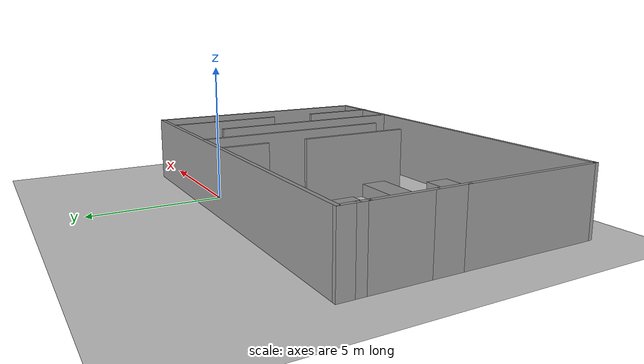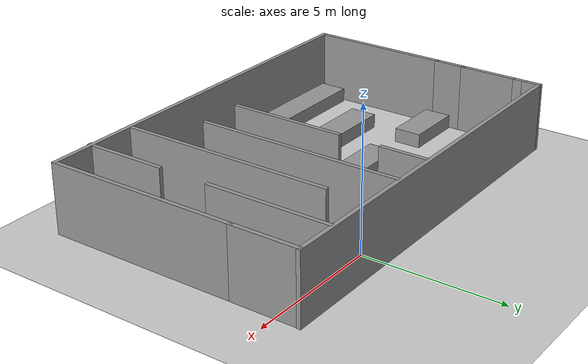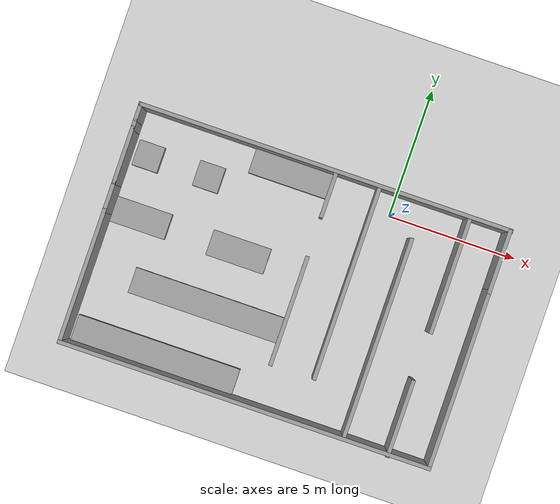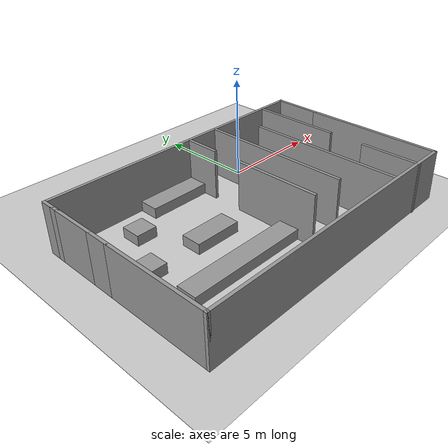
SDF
<sdf version="1.7">
 <world name="default">
  <scene><ambient>0.4 0.4 0.4 1</ambient><background>0.7 0.7 0.7 1</background><shadows>1</shadows></scene>
  <light name="sun" type="directional">
   <pose>0 0 10 0 -0 0</pose>
   <diffuse>0.8 0.8 0.8 1</diffuse>
   <specular>0.2 0.2 0.2 1</specular>
   <attenuation>
    <range>1000</range>
    <constant>0.9</constant>
    <linear>0.01</linear>
    <quadratic>0.001</quadratic>
   </attenuation>
   <direction>-0.5 0.1 -0.9</direction>
   <spot><inner_angle>0</inner_angle><outer_angle>0</outer_angle><falloff>0</falloff></spot>
  </light>
  <model name="ground_plane">
   <static>1</static>
   <link name="link">
    <collision name="collision">
     <geometry><plane><normal>0 0 1</normal><size>100 100</size></plane></geometry>
     <surface><friction><ode><mu>100</mu><mu2>50</mu2></ode></friction></surface>
    </collision>
    <visual name="visual">
     <cast_shadows>0</cast_shadows>
     <geometry><plane><normal>0 0 1</normal><size>100 100</size></plane></geometry>
     <material>
      <script><uri>file://media/materials/scripts/gazebo.material</uri><name>Gazebo/Grey</name></script>
     </material>
    </visual>
   </link>
  </model>
  <physics type="ode">
   <real_time_update_rate>0</real_time_update_rate>
   <max_step_size>0.001</max_step_size>
   <real_time_factor>1</real_time_factor>
   <ode>
    <solver>
     <type>quick</type>
     <iters>150</iters>
     <precon_iters>0</precon_iters>
     <sor>1.4</sor>
     <use_dynamic_moi_rescaling>1</use_dynamic_moi_rescaling>
    </solver>
    <constraints>
     <cfm>1e-05</cfm>
     <erp>0.2</erp>
     <contact_max_correcting_vel>2000</contact_max_correcting_vel>
     <contact_surface_layer>0.01</contact_surface_layer>
    </constraints>
   </ode>
  </physics>
  <gravity>0 0 -9.8</gravity>
  <magnetic_field>6e-06 2.3e-05 -4.2e-05</magnetic_field>
  <atmosphere type="adiabatic"/>
  <spherical_coordinates>
   <surface_model>EARTH_WGS84</surface_model>
   <latitude_deg>0</latitude_deg>
   <longitude_deg>0</longitude_deg>
   <elevation>0</elevation>
   <heading_deg>0</heading_deg>
  </spherical_coordinates>
  <model name="half_square">
   <pose>-2.87363 -3.76482 0 0 -0 0</pose>
   <link name="Wall_0">
    <collision name="Wall_0_Collision">
     <geometry><box><size>14.5 0.15 2.5</size></box></geometry>
     <pose>0 0 1.25 0 -0 0</pose>
    </collision>
    <visual name="Wall_0_Visual">
     <pose>0 0 1.25 0 -0 0</pose>
     <geometry><box><size>14.5 0.15 2.5</size></box></geometry>
     <material>
      <script><uri>file://media/materials/scripts/gazebo.material</uri><name>Gazebo/Grey</name></script>
      <ambient>1 1 1 1</ambient>
     </material>
     <meta><layer>0</layer></meta>
    </visual>
    <pose>-0.010056 -4.61503 0 0 -0 0</pose>
   </link>
   <link name="Wall_11">
    <collision name="Wall_11_Collision">
     <geometry><box><size>2.5 0.15 2.5</size></box></geometry>
     <pose>0 0 1.25 0 -0 0</pose>
    </collision>
    <visual name="Wall_11_Visual">
     <pose>0 0 1.25 0 -0 0</pose>
     <geometry><box><size>2.5 0.15 2.5</size></box></geometry>
     <material>
      <script><uri>file://media/materials/scripts/gazebo.material</uri><name>Gazebo/Grey</name></script>
      <ambient>1 1 1 1</ambient>
     </material>
     <meta><layer>0</layer></meta>
    </visual>
    <pose>7.16494 3.40997 0 0 -0 1.5708</pose>
   </link>
   <link name="Wall_13">
    <collision name="Wall_13_Collision">
     <geometry><box><size>0.730235 0.15 2.5</size></box></geometry>
     <pose>0 0 1.25 0 -0 0</pose>
    </collision>
    <visual name="Wall_13_Visual">
     <pose>0 0 1.25 0 -0 0</pose>
     <geometry><box><size>0.730235 0.15 2.5</size></box></geometry>
     <material>
      <script><uri>file://media/materials/scripts/gazebo.material</uri><name>Gazebo/Grey</name></script>
      <ambient>1 1 1 1</ambient>
     </material>
     <meta><layer>0</layer></meta>
    </visual>
    <pose>-7.18506 4.32491 0 0 -0 1.5708</pose>
   </link>
   <link name="Wall_14">
    <collision name="Wall_14_Collision">
     <geometry><box><size>14.5 0.15 2.5</size></box></geometry>
     <pose>0 0 1.25 0 -0 0</pose>
    </collision>
    <visual name="Wall_14_Visual">
     <pose>0 0 1.25 0 -0 0</pose>
     <geometry><box><size>14.5 0.15 2.5</size></box></geometry>
     <material>
      <script><uri>file://media/materials/scripts/gazebo.material</uri><name>Gazebo/Grey</name></script>
      <ambient>1 1 1 1</ambient>
     </material>
     <meta><layer>0</layer></meta>
    </visual>
    <pose>0.010057 4.61486 0 0 -0 0</pose>
   </link>
   <link name="Wall_2">
    <collision name="Wall_2_Collision">
     <geometry><box><size>5.25 0.15 2.5</size></box></geometry>
     <pose>0 0 1.25 0 -0 0</pose>
    </collision>
    <visual name="Wall_2_Visual">
     <pose>0 0 1.25 0 -0 0</pose>
     <geometry><box><size>5.25 0.15 2.5</size></box></geometry>
     <material>
      <script><uri>file://media/materials/scripts/gazebo.material</uri><name>Gazebo/Grey</name></script>
      <ambient>1 1 1 1</ambient>
     </material>
     <meta><layer>0</layer></meta>
    </visual>
    <pose>-7.18506 -2.06503 0 0 -0 1.5708</pose>
   </link>
   <link name="Wall_4">
    <collision name="Wall_4_Collision">
     <geometry><box><size>7 0.15 2.5</size></box></geometry>
     <pose>0 0 1.25 0 -0 0</pose>
    </collision>
    <visual name="Wall_4_Visual">
     <pose>0 0 1.25 0 -0 0</pose>
     <geometry><box><size>7 0.15 2.5</size></box></geometry>
     <material>
      <script><uri>file://media/materials/scripts/gazebo.material</uri><name>Gazebo/Grey</name></script>
      <ambient>1 1 1 1</ambient>
     </material>
     <meta><layer>0</layer></meta>
    </visual>
    <pose>7.16494 -1.19003 0 0 -0 1.5708</pose>
   </link>
   <link name="Wall_6">
    <collision name="Wall_6_Collision">
     <geometry><box><size>1.25 0.15 2.5</size></box></geometry>
     <pose>0 0 1.25 0 -0 0</pose>
    </collision>
    <visual name="Wall_6_Visual">
     <pose>0 0 1.25 0 -0 0</pose>
     <geometry><box><size>1.25 0.15 2.5</size></box></geometry>
     <material>
      <script><uri>file://media/materials/scripts/gazebo.material</uri><name>Gazebo/Grey</name></script>
      <ambient>1 1 1 1</ambient>
     </material>
     <meta><layer>0</layer></meta>
    </visual>
    <pose>-7.18506 1.03497 0 0 -0 1.5708</pose>
   </link>
   <link name="Wall_8">
    <collision name="Wall_8_Collision">
     <geometry><box><size>2.25 0.15 2.5</size></box></geometry>
     <pose>0 0 1.25 0 -0 0</pose>
    </collision>
    <visual name="Wall_8_Visual">
     <pose>0 0 1.25 0 -0 0</pose>
     <geometry><box><size>2.25 0.15 2.5</size></box></geometry>
     <material>
      <script><uri>file://media/materials/scripts/gazebo.material</uri><name>Gazebo/Grey</name></script>
      <ambient>1 1 1 1</ambient>
     </material>
     <meta><layer>0</layer></meta>
    </visual>
    <pose>-7.18506 2.63497 0 0 -0 1.5708</pose>
   </link>
   <link name="Wall_9">
    <collision name="Wall_9_Collision">
     <geometry><box><size>0.5 0.15 2.5</size></box></geometry>
     <pose>0 0 1.25 0 -0 0</pose>
    </collision>
    <visual name="Wall_9_Visual">
     <pose>0 0 1.25 0 -0 0</pose>
     <geometry><box><size>0.5 0.15 2.5</size></box></geometry>
     <material>
      <script><uri>file://media/materials/scripts/gazebo.material</uri><name>Gazebo/Grey</name></script>
      <ambient>1 1 1 1</ambient>
     </material>
     <meta><layer>0</layer></meta>
    </visual>
    <pose>-7.18506 3.85997 0 0 -0 1.5708</pose>
   </link>
   <static>1</static>
  </model>
  <plugin name="gazebo_occupancy_map" filename="libgazebo_2Dmap_plugin.so">
   <map_resolution>0.02</map_resolution>
   <map_height>0.7</map_height>
   <map_size_x>20</map_size_x>
   <map_size_y>20</map_size_y>
   <init_robot_x>0</init_robot_x>
   <init_robot_y>0</init_robot_y>
  </plugin>
  <model name="half_blocks">
   <link name="link_3">
    <inertial>
     <mass>6.41785</mass>
     <inertia><ixx>1.06964</ixx><ixy>0</ixy><ixz>0</ixz><iyy>22.5635</iyy><iyz>0</iyz><izz>22.5635</izz></inertia>
    </inertial>
    <pose>-0.066497 -4.83203 0 0 -0 0</pose>
    <visual name="visual">
     <geometry><box><size>6.41785 1 1</size></box></geometry>
     <material>
      <lighting>1</lighting>
      <script><uri>file://media/materials/scripts/gazebo.material</uri><name>Gazebo/Grey</name></script>
      <shader type="pixel"/>
     </material>
    </visual>
    <collision name="collision">
     <geometry><box><size>6.41785 1 1</size></box></geometry>
     <surface>
      <friction>
       <ode><mu>1</mu><mu2>1</mu2><fdir1>0 0 0</fdir1><slip1>0</slip1><slip2>0</slip2></ode>
       <torsional>
        <coefficient>1</coefficient>
        <patch_radius>0</patch_radius>
        <surface_radius>0</surface_radius>
        <use_patch_radius>1</use_patch_radius>
        <ode><slip>0</slip></ode>
       </torsional>
      </friction>
      <bounce><restitution_coefficient>0</restitution_coefficient><threshold>1e+06</threshold></bounce>
      <contact>
       <collide_without_contact>0</collide_without_contact>
       <collide_without_contact_bitmask>1</collide_without_contact_bitmask>
       <collide_bitmask>1</collide_bitmask>
       <ode>
        <soft_cfm>0</soft_cfm>
        <soft_erp>0.2</soft_erp>
        <kp>1e+13</kp>
        <kd>1</kd>
        <max_vel>0.01</max_vel>
        <min_depth>0</min_depth>
       </ode>
       <bullet>
        <split_impulse>1</split_impulse>
        <split_impulse_penetration_threshold>-0.01</split_impulse_penetration_threshold>
        <soft_cfm>0</soft_cfm>
        <soft_erp>0.2</soft_erp>
        <kp>1e+13</kp>
        <kd>1</kd>
       </bullet>
      </contact>
     </surface>
    </collision>
   </link>
   <link name="link_3_clone">
    <inertial>
     <mass>5.92562</mass>
     <inertia><ixx>0.987603</ixx><ixy>0</ixy><ixz>0</ixz><iyy>17.8326</iyy><iyz>0</iyz><izz>17.8326</izz></inertia>
    </inertial>
    <pose>1.15812 -2.45701 0 0 -0 0</pose>
    <visual name="visual">
     <geometry><box><size>5.92562 1 1</size></box></geometry>
     <material>
      <lighting>1</lighting>
      <script><uri>file://media/materials/scripts/gazebo.material</uri><name>Gazebo/Grey</name></script>
      <shader type="pixel"/>
     </material>
    </visual>
    <collision name="collision">
     <geometry><box><size>5.92562 1 1</size></box></geometry>
     <surface>
      <friction>
       <ode><mu>1</mu><mu2>1</mu2><fdir1>0 0 0</fdir1><slip1>0</slip1><slip2>0</slip2></ode>
       <torsional>
        <coefficient>1</coefficient>
        <patch_radius>0</patch_radius>
        <surface_radius>0</surface_radius>
        <use_patch_radius>1</use_patch_radius>
        <ode><slip>0</slip></ode>
       </torsional>
      </friction>
      <bounce><restitution_coefficient>0</restitution_coefficient><threshold>1e+06</threshold></bounce>
      <contact>
       <collide_without_contact>0</collide_without_contact>
       <collide_without_contact_bitmask>1</collide_without_contact_bitmask>
       <collide_bitmask>1</collide_bitmask>
       <ode>
        <soft_cfm>0</soft_cfm>
        <soft_erp>0.2</soft_erp>
        <kp>1e+13</kp>
        <kd>1</kd>
        <max_vel>0.01</max_vel>
        <min_depth>0</min_depth>
       </ode>
       <bullet>
        <split_impulse>1</split_impulse>
        <split_impulse_penetration_threshold>-0.01</split_impulse_penetration_threshold>
        <soft_cfm>0</soft_cfm>
        <soft_erp>0.2</soft_erp>
        <kp>1e+13</kp>
        <kd>1</kd>
       </bullet>
      </contact>
     </surface>
    </collision>
   </link>
   <link name="link_4">
    <inertial>
     <mass>2.28802</mass>
     <inertia><ixx>0.381337</ixx><ixy>0</ixy><ixz>0</ixz><iyy>1.18882</iyy><iyz>0</iyz><izz>1.18882</izz></inertia>
    </inertial>
    <pose>1.64442 -0.161822 0 0 -0 0</pose>
    <visual name="visual">
     <geometry><box><size>2.28802 1 1</size></box></geometry>
     <material>
      <lighting>1</lighting>
      <script><uri>file://media/materials/scripts/gazebo.material</uri><name>Gazebo/Grey</name></script>
      <shader type="pixel"/>
     </material>
    </visual>
    <collision name="collision">
     <geometry><box><size>2.28802 1 1</size></box></geometry>
     <surface>
      <friction>
       <ode><mu>1</mu><mu2>1</mu2><fdir1>0 0 0</fdir1><slip1>0</slip1><slip2>0</slip2></ode>
       <torsional>
        <coefficient>1</coefficient>
        <patch_radius>0</patch_radius>
        <surface_radius>0</surface_radius>
        <use_patch_radius>1</use_patch_radius>
        <ode><slip>0</slip></ode>
       </torsional>
      </friction>
      <bounce><restitution_coefficient>0</restitution_coefficient><threshold>1e+06</threshold></bounce>
      <contact>
       <collide_without_contact>0</collide_without_contact>
       <collide_without_contact_bitmask>1</collide_without_contact_bitmask>
       <collide_bitmask>1</collide_bitmask>
       <ode>
        <soft_cfm>0</soft_cfm>
        <soft_erp>0.2</soft_erp>
        <kp>1e+13</kp>
        <kd>1</kd>
        <max_vel>0.01</max_vel>
        <min_depth>0</min_depth>
       </ode>
       <bullet>
        <split_impulse>1</split_impulse>
        <split_impulse_penetration_threshold>-0.01</split_impulse_penetration_threshold>
        <soft_cfm>0</soft_cfm>
        <soft_erp>0.2</soft_erp>
        <kp>1e+13</kp>
        <kd>1</kd>
       </bullet>
      </contact>
     </surface>
    </collision>
   </link>
   <link name="link_5">
    <inertial>
     <mass>2.17448</mass>
     <inertia><ixx>0.362414</ixx><ixy>0</ixy><ixz>0</ixz><iyy>1.03803</iyy><iyz>0</iyz><izz>1.03803</izz></inertia>
    </inertial>
    <pose>-2.2472 -0.13715 0 0 -0 0</pose>
    <visual name="visual">
     <geometry><box><size>2.17449 1 1</size></box></geometry>
     <material>
      <lighting>1</lighting>
      <script><uri>file://media/materials/scripts/gazebo.material</uri><name>Gazebo/Grey</name></script>
      <shader type="pixel"/>
     </material>
    </visual>
    <collision name="collision">
     <geometry><box><size>2.17449 1 1</size></box></geometry>
     <surface>
      <friction>
       <ode><mu>1</mu><mu2>1</mu2><fdir1>0 0 0</fdir1><slip1>0</slip1><slip2>0</slip2></ode>
       <torsional>
        <coefficient>1</coefficient>
        <patch_radius>0</patch_radius>
        <surface_radius>0</surface_radius>
        <use_patch_radius>1</use_patch_radius>
        <ode><slip>0</slip></ode>
       </torsional>
      </friction>
      <bounce><restitution_coefficient>0</restitution_coefficient><threshold>1e+06</threshold></bounce>
      <contact>
       <collide_without_contact>0</collide_without_contact>
       <collide_without_contact_bitmask>1</collide_without_contact_bitmask>
       <collide_bitmask>1</collide_bitmask>
       <ode>
        <soft_cfm>0</soft_cfm>
        <soft_erp>0.2</soft_erp>
        <kp>1e+13</kp>
        <kd>1</kd>
        <max_vel>0.01</max_vel>
        <min_depth>0</min_depth>
       </ode>
       <bullet>
        <split_impulse>1</split_impulse>
        <split_impulse_penetration_threshold>-0.01</split_impulse_penetration_threshold>
        <soft_cfm>0</soft_cfm>
        <soft_erp>0.2</soft_erp>
        <kp>1e+13</kp>
        <kd>1</kd>
       </bullet>
      </contact>
     </surface>
    </collision>
   </link>
   <link name="link_6">
    <inertial>
     <mass>1</mass>
     <inertia>
      <ixx>0.166667</ixx>
      <ixy>0</ixy>
      <ixz>0</ixz>
      <iyy>0.166667</iyy>
      <iyz>0</iyz>
      <izz>0.166667</izz>
     </inertia>
    </inertial>
    <pose>-2.73356 2.14893 0 0 -0 0</pose>
    <visual name="visual">
     <geometry><box><size>1 1 1</size></box></geometry>
     <material>
      <lighting>1</lighting>
      <script><uri>file://media/materials/scripts/gazebo.material</uri><name>Gazebo/Grey</name></script>
      <shader type="pixel"/>
     </material>
    </visual>
    <collision name="collision">
     <geometry><box><size>1 1 1</size></box></geometry>
     <surface>
      <friction>
       <ode><mu>1</mu><mu2>1</mu2><fdir1>0 0 0</fdir1><slip1>0</slip1><slip2>0</slip2></ode>
       <torsional>
        <coefficient>1</coefficient>
        <patch_radius>0</patch_radius>
        <surface_radius>0</surface_radius>
        <use_patch_radius>1</use_patch_radius>
        <ode><slip>0</slip></ode>
       </torsional>
      </friction>
      <bounce><restitution_coefficient>0</restitution_coefficient><threshold>1e+06</threshold></bounce>
      <contact>
       <collide_without_contact>0</collide_without_contact>
       <collide_without_contact_bitmask>1</collide_without_contact_bitmask>
       <collide_bitmask>1</collide_bitmask>
       <ode>
        <soft_cfm>0</soft_cfm>
        <soft_erp>0.2</soft_erp>
        <kp>1e+13</kp>
        <kd>1</kd>
        <max_vel>0.01</max_vel>
        <min_depth>0</min_depth>
       </ode>
       <bullet>
        <split_impulse>1</split_impulse>
        <split_impulse_penetration_threshold>-0.01</split_impulse_penetration_threshold>
        <soft_cfm>0</soft_cfm>
        <soft_erp>0.2</soft_erp>
        <kp>1e+13</kp>
        <kd>1</kd>
       </bullet>
      </contact>
     </surface>
    </collision>
   </link>
   <link name="link_7">
    <inertial>
     <mass>1</mass>
     <inertia>
      <ixx>0.166667</ixx>
      <ixy>0</ixy>
      <ixz>0</ixz>
      <iyy>0.166667</iyy>
      <iyz>0</iyz>
      <izz>0.166667</izz>
     </inertia>
    </inertial>
    <pose>-0.328889 2.15439 0 0 -0 0</pose>
    <visual name="visual">
     <geometry><box><size>1 1 1</size></box></geometry>
     <material>
      <lighting>1</lighting>
      <script><uri>file://media/materials/scripts/gazebo.material</uri><name>Gazebo/Grey</name></script>
      <shader type="pixel"/>
     </material>
    </visual>
    <collision name="collision">
     <geometry><box><size>1 1 1</size></box></geometry>
     <surface>
      <friction>
       <ode><mu>1</mu><mu2>1</mu2><fdir1>0 0 0</fdir1><slip1>0</slip1><slip2>0</slip2></ode>
       <torsional>
        <coefficient>1</coefficient>
        <patch_radius>0</patch_radius>
        <surface_radius>0</surface_radius>
        <use_patch_radius>1</use_patch_radius>
        <ode><slip>0</slip></ode>
       </torsional>
      </friction>
      <bounce><restitution_coefficient>0</restitution_coefficient><threshold>1e+06</threshold></bounce>
      <contact>
       <collide_without_contact>0</collide_without_contact>
       <collide_without_contact_bitmask>1</collide_without_contact_bitmask>
       <collide_bitmask>1</collide_bitmask>
       <ode>
        <soft_cfm>0</soft_cfm>
        <soft_erp>0.2</soft_erp>
        <kp>1e+13</kp>
        <kd>1</kd>
        <max_vel>0.01</max_vel>
        <min_depth>0</min_depth>
       </ode>
       <bullet>
        <split_impulse>1</split_impulse>
        <split_impulse_penetration_threshold>-0.01</split_impulse_penetration_threshold>
        <soft_cfm>0</soft_cfm>
        <soft_erp>0.2</soft_erp>
        <kp>1e+13</kp>
        <kd>1</kd>
       </bullet>
      </contact>
     </surface>
    </collision>
   </link>
   <link name="link_8">
    <inertial>
     <mass>3.10091</mass>
     <inertia><ixx>0.516819</ixx><ixy>0</ixy><ixz>0</ixz><iyy>2.74318</iyy><iyz>0</iyz><izz>2.74318</izz></inertia>
    </inertial>
    <pose>2.57362 3.2847 0 0 -0 0</pose>
    <visual name="visual">
     <geometry><box><size>3.10091 1 1</size></box></geometry>
     <material>
      <lighting>1</lighting>
      <script><uri>file://media/materials/scripts/gazebo.material</uri><name>Gazebo/Grey</name></script>
      <shader type="pixel"/>
     </material>
    </visual>
    <collision name="collision">
     <geometry><box><size>3.10091 1 1</size></box></geometry>
     <surface>
      <friction>
       <ode><mu>1</mu><mu2>1</mu2><fdir1>0 0 0</fdir1><slip1>0</slip1><slip2>0</slip2></ode>
       <torsional>
        <coefficient>1</coefficient>
        <patch_radius>0</patch_radius>
        <surface_radius>0</surface_radius>
        <use_patch_radius>1</use_patch_radius>
        <ode><slip>0</slip></ode>
       </torsional>
      </friction>
      <bounce><restitution_coefficient>0</restitution_coefficient><threshold>1e+06</threshold></bounce>
      <contact>
       <collide_without_contact>0</collide_without_contact>
       <collide_without_contact_bitmask>1</collide_without_contact_bitmask>
       <collide_bitmask>1</collide_bitmask>
       <ode>
        <soft_cfm>0</soft_cfm>
        <soft_erp>0.2</soft_erp>
        <kp>1e+13</kp>
        <kd>1</kd>
        <max_vel>0.01</max_vel>
        <min_depth>0</min_depth>
       </ode>
       <bullet>
        <split_impulse>1</split_impulse>
        <split_impulse_penetration_threshold>-0.01</split_impulse_penetration_threshold>
        <soft_cfm>0</soft_cfm>
        <soft_erp>0.2</soft_erp>
        <kp>1e+13</kp>
        <kd>1</kd>
       </bullet>
      </contact>
     </surface>
    </collision>
   </link>
   <static>1</static>
   <pose>-6.61004 -2.97001 0 0 -0 0</pose>
  </model>
  <model name="half_maze">
   <pose>0.148628 -3.83448 0 0 -0 0</pose>
   <link name="Wall_11">
    <collision name="Wall_11_Collision">
     <geometry><box><size>7.5 0.15 2.5</size></box></geometry>
     <pose>0 0 1.25 0 -0 0</pose>
    </collision>
    <visual name="Wall_11_Visual">
     <pose>0 0 1.25 0 -0 0</pose>
     <geometry><box><size>7.5 0.15 2.5</size></box></geometry>
     <material>
      <script><uri>file://media/materials/scripts/gazebo.material</uri><name>Gazebo/Grey</name></script>
      <ambient>1 1 1 1</ambient>
     </material>
     <meta><layer>0</layer></meta>
    </visual>
    <pose>-0.90925 0.907538 0 0 -0 -1.5708</pose>
   </link>
   <link name="Wall_13">
    <collision name="Wall_13_Collision">
     <geometry><box><size>4.25 0.15 2.5</size></box></geometry>
     <pose>0 0 1.25 0 -0 0</pose>
    </collision>
    <visual name="Wall_13_Visual">
     <pose>0 0 1.25 0 -0 0</pose>
     <geometry><box><size>4.25 0.15 2.5</size></box></geometry>
     <material>
      <script><uri>file://media/materials/scripts/gazebo.material</uri><name>Gazebo/Grey</name></script>
      <ambient>1 1 1 1</ambient>
     </material>
     <meta><layer>0</layer></meta>
    </visual>
    <pose>-2.59597 -0.740882 0 0 -0 1.5708</pose>
   </link>
   <link name="Wall_15">
    <collision name="Wall_15_Collision">
     <geometry><box><size>1.75 0.15 2.5</size></box></geometry>
     <pose>0 0 1.25 0 -0 0</pose>
    </collision>
    <visual name="Wall_15_Visual">
     <pose>0 0 1.25 0 -0 0</pose>
     <geometry><box><size>1.75 0.15 2.5</size></box></geometry>
     <material>
      <script><uri>file://media/materials/scripts/gazebo.material</uri><name>Gazebo/Grey</name></script>
      <ambient>1 1 1 1</ambient>
     </material>
     <meta><layer>0</layer></meta>
    </visual>
    <pose>-2.59597 3.7616 0 0 -0 1.5708</pose>
   </link>
   <link name="Wall_2">
    <collision name="Wall_2_Collision">
     <geometry><box><size>4.5 0.15 2.5</size></box></geometry>
     <pose>0 0 1.25 0 -0 0</pose>
    </collision>
    <visual name="Wall_2_Visual">
     <pose>0 0 1.25 0 -0 0</pose>
     <geometry><box><size>4.5 0.15 2.5</size></box></geometry>
     <material>
      <script><uri>file://media/materials/scripts/gazebo.material</uri><name>Gazebo/Grey</name></script>
      <ambient>1 1 1 1</ambient>
     </material>
     <meta><layer>0</layer></meta>
    </visual>
    <pose>2.59597 2.4041 0 0 -0 1.5708</pose>
   </link>
   <link name="Wall_5">
    <collision name="Wall_5_Collision">
     <geometry><box><size>7.75 0.15 2.5</size></box></geometry>
     <pose>0 0 1.25 0 -0 0</pose>
    </collision>
    <visual name="Wall_5_Visual">
     <pose>0 0 1.25 0 -0 0</pose>
     <geometry><box><size>7.75 0.15 2.5</size></box></geometry>
     <material>
      <script><uri>file://media/materials/scripts/gazebo.material</uri><name>Gazebo/Grey</name></script>
      <ambient>1 1 1 1</ambient>
     </material>
     <meta><layer>0</layer></meta>
    </visual>
    <pose>0.818816 -0.615341 0 0 -0 -1.5708</pose>
   </link>
   <link name="Wall_7">
    <collision name="Wall_7_Collision">
     <geometry><box><size>3 0.15 2.5</size></box></geometry>
     <pose>0 0 1.25 0 -0 0</pose>
    </collision>
    <visual name="Wall_7_Visual">
     <pose>0 0 1.25 0 -0 0</pose>
     <geometry><box><size>3 0.15 2.5</size></box></geometry>
     <material>
      <script><uri>file://media/materials/scripts/gazebo.material</uri><name>Gazebo/Grey</name></script>
      <ambient>1 1 1 1</ambient>
     </material>
     <meta><layer>0</layer></meta>
    </visual>
    <pose>2.56224 -3.15754 0 0 -0 -1.5708</pose>
   </link>
   <static>1</static>
  </model>
  <plugin name="gazebo_occupancy_map" filename="libgazebo_2Dmap_plugin.so">
   <map_resolution>0.02</map_resolution>
   <map_height>0.7</map_height>
   <map_size_x>20</map_size_x>
   <map_size_y>20</map_size_y>
   <init_robot_x>0</init_robot_x>
   <init_robot_y>0</init_robot_y>
  </plugin>
 </world>
</sdf>
